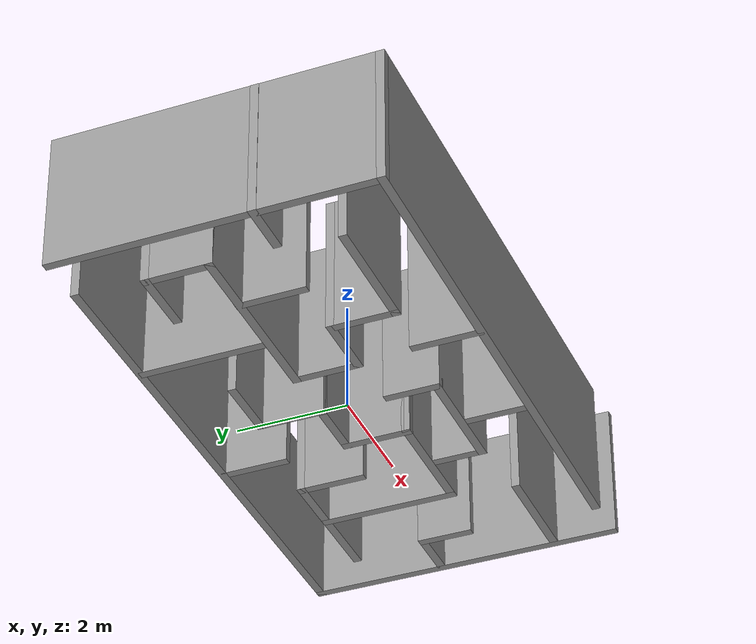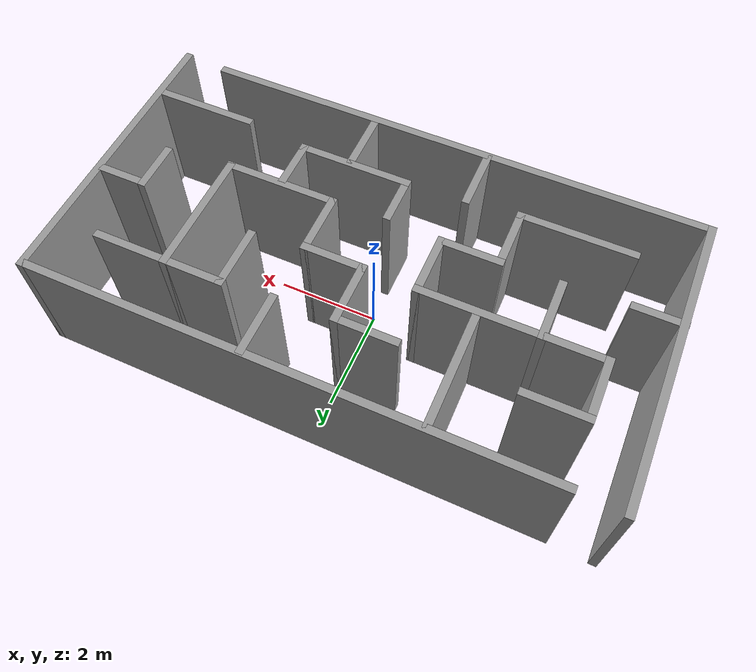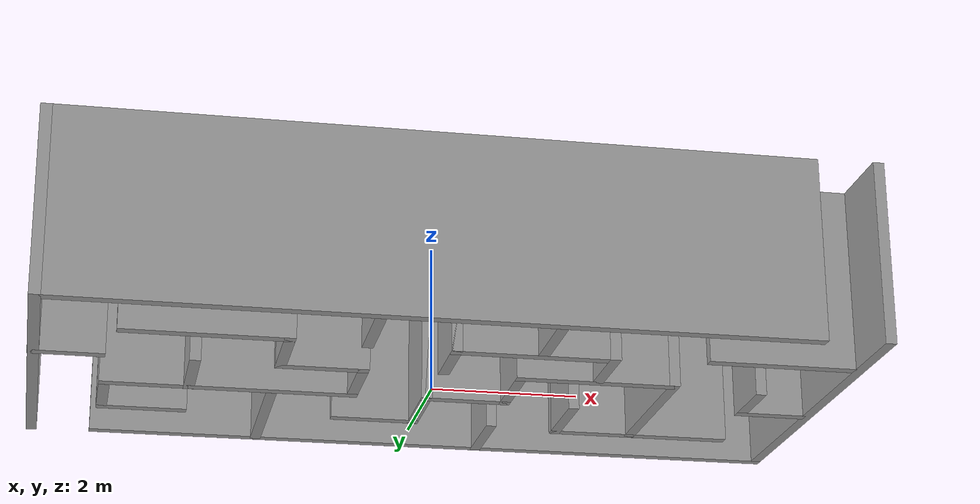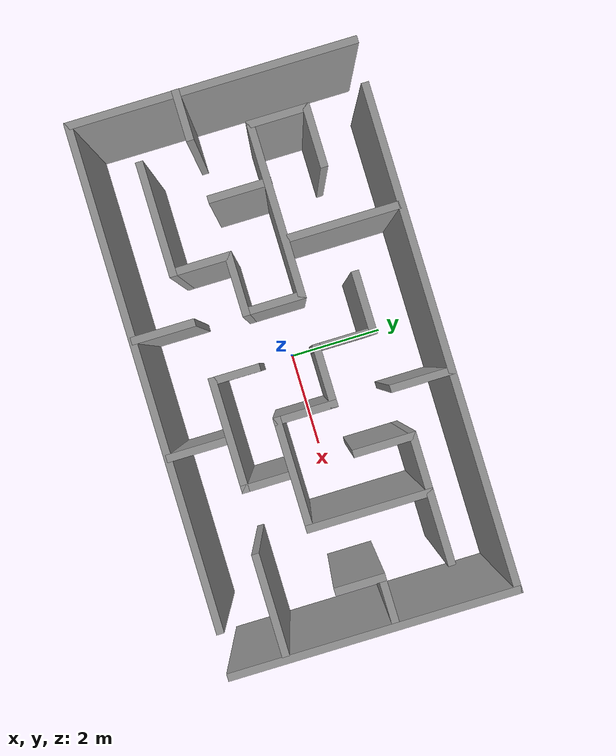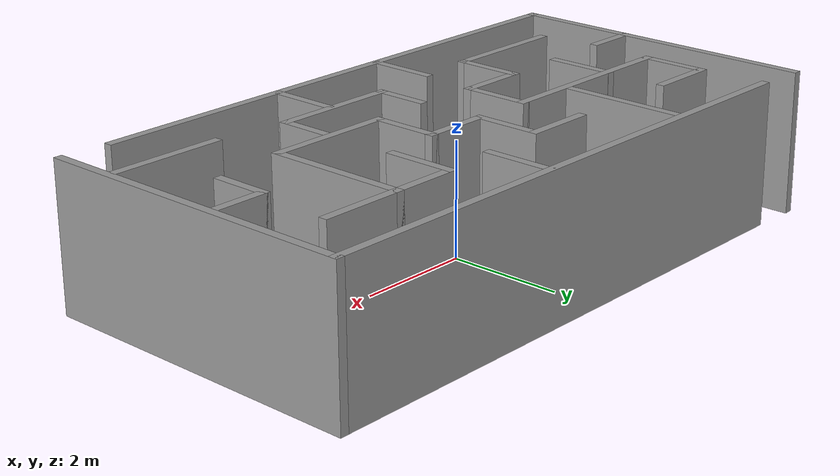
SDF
<?xml version='1.0'?>
<sdf version='1.6'>
  <model name='Maze'>
    <pose frame=''>0.053891 -0.000987 0 0 -0 0</pose>
    <link name='Wall_1'>
      <collision name='Wall_1_Collision'>
        <geometry>
          <box>
            <size>10 0.15 2.5</size>
          </box>
        </geometry>
        <pose frame=''>0 0 1.25 0 -0 0</pose>
      </collision>
      <visual name='Wall_1_Visual'>
        <pose frame=''>0 0 1.25 0 -0 0</pose>
        <geometry>
          <box>
            <size>10 0.15 2.5</size>
          </box>
        </geometry>
        <material>
          <script>
            <uri>file://media/materials/scripts/gazebo.material</uri>
            <name>Gazebo/Grey</name>
          </script>
          <ambient>1 1 1 1</ambient>
        </material>
        <meta>
          <layer>0</layer>
        </meta>
      </visual>
      <pose frame=''>0.448658 2.7832 0 0 -0 0</pose>
    </link>
    <link name='Wall_10'>
      <collision name='Wall_10_Collision'>
        <geometry>
          <box>
            <size>1.25 0.15 2.5</size>
          </box>
        </geometry>
        <pose frame=''>0 0 1.25 0 -0 0</pose>
      </collision>
      <visual name='Wall_10_Visual'>
        <pose frame=''>0 0 1.25 0 -0 0</pose>
        <geometry>
          <box>
            <size>1.25 0.15 2.5</size>
          </box>
        </geometry>
        <material>
          <script>
            <uri>file://media/materials/scripts/gazebo.material</uri>
            <name>Gazebo/Grey</name>
          </script>
          <ambient>1 1 1 1</ambient>
        </material>
        <meta>
          <layer>0</layer>
        </meta>
      </visual>
      <pose frame=''>-1.07048 -0.053081 0 0 -0 -1.5708</pose>
    </link>
    <link name='Wall_11'>
      <collision name='Wall_11_Collision'>
        <geometry>
          <box>
            <size>1.25 0.15 2.5</size>
          </box>
        </geometry>
        <pose frame=''>0 0 1.25 0 -0 0</pose>
      </collision>
      <visual name='Wall_11_Visual'>
        <pose frame=''>0 0 1.25 0 -0 0</pose>
        <geometry>
          <box>
            <size>1.25 0.15 2.5</size>
          </box>
        </geometry>
        <material>
          <script>
            <uri>file://media/materials/scripts/gazebo.material</uri>
            <name>Gazebo/Grey</name>
          </script>
          <ambient>1 1 1 1</ambient>
        </material>
        <meta>
          <layer>0</layer>
        </meta>
      </visual>
      <pose frame=''>-1.62048 -0.603081 0 0 -0 3.14159</pose>
    </link>
    <link name='Wall_12'>
      <collision name='Wall_12_Collision'>
        <geometry>
          <box>
            <size>1.25 0.15 2.5</size>
          </box>
        </geometry>
        <pose frame=''>0 0 1.25 0 -0 0</pose>
      </collision>
      <visual name='Wall_12_Visual'>
        <pose frame=''>0 0 1.25 0 -0 0</pose>
        <geometry>
          <box>
            <size>1.25 0.15 2.5</size>
          </box>
        </geometry>
        <material>
          <script>
            <uri>file://media/materials/scripts/gazebo.material</uri>
            <name>Gazebo/Grey</name>
          </script>
          <ambient>1 1 1 1</ambient>
        </material>
        <meta>
          <layer>0</layer>
        </meta>
      </visual>
      <pose frame=''>-2.17048 -1.15308 0 0 -0 -1.5708</pose>
    </link>
    <link name='Wall_13'>
      <collision name='Wall_13_Collision'>
        <geometry>
          <box>
            <size>2.25 0.15 2.5</size>
          </box>
        </geometry>
        <pose frame=''>0 0 1.25 0 -0 0</pose>
      </collision>
      <visual name='Wall_13_Visual'>
        <pose frame=''>0 0 1.25 0 -0 0</pose>
        <geometry>
          <box>
            <size>2.25 0.15 2.5</size>
          </box>
        </geometry>
        <material>
          <script>
            <uri>file://media/materials/scripts/gazebo.material</uri>
            <name>Gazebo/Grey</name>
          </script>
          <ambient>1 1 1 1</ambient>
        </material>
        <meta>
          <layer>0</layer>
        </meta>
      </visual>
      <pose frame=''>-3.22048 -1.70308 0 0 -0 3.14159</pose>
    </link>
    <link name='Wall_15'>
      <collision name='Wall_15_Collision'>
        <geometry>
          <box>
            <size>2.25 0.15 2.5</size>
          </box>
        </geometry>
        <pose frame=''>0 0 1.25 0 -0 0</pose>
      </collision>
      <visual name='Wall_15_Visual'>
        <pose frame=''>0 0 1.25 0 -0 0</pose>
        <geometry>
          <box>
            <size>2.25 0.15 2.5</size>
          </box>
        </geometry>
        <material>
          <script>
            <uri>file://media/materials/scripts/gazebo.material</uri>
            <name>Gazebo/Grey</name>
          </script>
          <ambient>1 1 1 1</ambient>
        </material>
        <meta>
          <layer>0</layer>
        </meta>
      </visual>
      <pose frame=''>-2.16461 1.67356 0 0 -0 1.5708</pose>
    </link>
    <link name='Wall_17'>
      <collision name='Wall_17_Collision'>
        <geometry>
          <box>
            <size>1.25 0.15 2.5</size>
          </box>
        </geometry>
        <pose frame=''>0 0 1.25 0 -0 0</pose>
      </collision>
      <visual name='Wall_17_Visual'>
        <pose frame=''>0 0 1.25 0 -0 0</pose>
        <geometry>
          <box>
            <size>1.25 0.15 2.5</size>
          </box>
        </geometry>
        <material>
          <script>
            <uri>file://media/materials/scripts/gazebo.material</uri>
            <name>Gazebo/Grey</name>
          </script>
          <ambient>1 1 1 1</ambient>
        </material>
        <meta>
          <layer>0</layer>
        </meta>
      </visual>
      <pose frame=''>1.09006 2.20278 0 0 -0 -1.5708</pose>
    </link>
    <link name='Wall_19'>
      <collision name='Wall_19_Collision'>
        <geometry>
          <box>
            <size>1.25 0.15 2.5</size>
          </box>
        </geometry>
        <pose frame=''>0 0 1.25 0 -0 0</pose>
      </collision>
      <visual name='Wall_19_Visual'>
        <pose frame=''>0 0 1.25 0 -0 0</pose>
        <geometry>
          <box>
            <size>1.25 0.15 2.5</size>
          </box>
        </geometry>
        <material>
          <script>
            <uri>file://media/materials/scripts/gazebo.material</uri>
            <name>Gazebo/Grey</name>
          </script>
          <ambient>1 1 1 1</ambient>
        </material>
        <meta>
          <layer>0</layer>
        </meta>
      </visual>
      <pose frame=''>-0.595626 1.58171 0 0 -0 0</pose>
    </link>
    <link name='Wall_2'>
      <collision name='Wall_2_Collision'>
        <geometry>
          <box>
            <size>5.75 0.15 2.5</size>
          </box>
        </geometry>
        <pose frame=''>0 0 1.25 0 -0 0</pose>
      </collision>
      <visual name='Wall_2_Visual'>
        <pose frame=''>0 0 1.25 0 -0 0</pose>
        <geometry>
          <box>
            <size>5.75 0.15 2.5</size>
          </box>
        </geometry>
        <material>
          <script>
            <uri>file://media/materials/scripts/gazebo.material</uri>
            <name>Gazebo/Grey</name>
          </script>
          <ambient>1 1 1 1</ambient>
        </material>
        <meta>
          <layer>0</layer>
        </meta>
      </visual>
      <pose frame=''>5.37366 -0.016799 0 0 -0 -1.5708</pose>
    </link>
    <link name='Wall_20'>
      <collision name='Wall_20_Collision'>
        <geometry>
          <box>
            <size>1.25 0.15 2.5</size>
          </box>
        </geometry>
        <pose frame=''>0 0 1.25 0 -0 0</pose>
      </collision>
      <visual name='Wall_20_Visual'>
        <pose frame=''>0 0 1.25 0 -0 0</pose>
        <geometry>
          <box>
            <size>1.25 0.15 2.5</size>
          </box>
        </geometry>
        <material>
          <script>
            <uri>file://media/materials/scripts/gazebo.material</uri>
            <name>Gazebo/Grey</name>
          </script>
          <ambient>1 1 1 1</ambient>
        </material>
        <meta>
          <layer>0</layer>
        </meta>
      </visual>
      <pose frame=''>-0.045626 1.03171 0 0 -0 -1.5708</pose>
    </link>
    <link name='Wall_21'>
      <collision name='Wall_21_Collision'>
        <geometry>
          <box>
            <size>1.25 0.15 2.5</size>
          </box>
        </geometry>
        <pose frame=''>0 0 1.25 0 -0 0</pose>
      </collision>
      <visual name='Wall_21_Visual'>
        <pose frame=''>0 0 1.25 0 -0 0</pose>
        <geometry>
          <box>
            <size>1.25 0.15 2.5</size>
          </box>
        </geometry>
        <material>
          <script>
            <uri>file://media/materials/scripts/gazebo.material</uri>
            <name>Gazebo/Grey</name>
          </script>
          <ambient>1 1 1 1</ambient>
        </material>
        <meta>
          <layer>0</layer>
        </meta>
      </visual>
      <pose frame=''>0.504374 0.48171 0 0 -0 0</pose>
    </link>
    <link name='Wall_22'>
      <collision name='Wall_22_Collision'>
        <geometry>
          <box>
            <size>1.25 0.15 2.5</size>
          </box>
        </geometry>
        <pose frame=''>0 0 1.25 0 -0 0</pose>
      </collision>
      <visual name='Wall_22_Visual'>
        <pose frame=''>0 0 1.25 0 -0 0</pose>
        <geometry>
          <box>
            <size>1.25 0.15 2.5</size>
          </box>
        </geometry>
        <material>
          <script>
            <uri>file://media/materials/scripts/gazebo.material</uri>
            <name>Gazebo/Grey</name>
          </script>
          <ambient>1 1 1 1</ambient>
        </material>
        <meta>
          <layer>0</layer>
        </meta>
      </visual>
      <pose frame=''>1.05437 -0.06829 0 0 -0 -1.5708</pose>
    </link>
    <link name='Wall_23'>
      <collision name='Wall_23_Collision'>
        <geometry>
          <box>
            <size>2.25 0.15 2.5</size>
          </box>
        </geometry>
        <pose frame=''>0 0 1.25 0 -0 0</pose>
      </collision>
      <visual name='Wall_23_Visual'>
        <pose frame=''>0 0 1.25 0 -0 0</pose>
        <geometry>
          <box>
            <size>2.25 0.15 2.5</size>
          </box>
        </geometry>
        <material>
          <script>
            <uri>file://media/materials/scripts/gazebo.material</uri>
            <name>Gazebo/Grey</name>
          </script>
          <ambient>1 1 1 1</ambient>
        </material>
        <meta>
          <layer>0</layer>
        </meta>
      </visual>
      <pose frame=''>2.10437 -0.61829 0 0 -0 0</pose>
    </link>
    <link name='Wall_24'>
      <collision name='Wall_24_Collision'>
        <geometry>
          <box>
            <size>2.5 0.15 2.5</size>
          </box>
        </geometry>
        <pose frame=''>0 0 1.25 0 -0 0</pose>
      </collision>
      <visual name='Wall_24_Visual'>
        <pose frame=''>0 0 1.25 0 -0 0</pose>
        <geometry>
          <box>
            <size>2.5 0.15 2.5</size>
          </box>
        </geometry>
        <material>
          <script>
            <uri>file://media/materials/scripts/gazebo.material</uri>
            <name>Gazebo/Grey</name>
          </script>
          <ambient>1 1 1 1</ambient>
        </material>
        <meta>
          <layer>0</layer>
        </meta>
      </visual>
      <pose frame=''>3.15437 0.55671 0 0 -0 1.5708</pose>
    </link>
    <link name='Wall_25'>
      <collision name='Wall_25_Collision'>
        <geometry>
          <box>
            <size>1.25 0.15 2.5</size>
          </box>
        </geometry>
        <pose frame=''>0 0 1.25 0 -0 0</pose>
      </collision>
      <visual name='Wall_25_Visual'>
        <pose frame=''>0 0 1.25 0 -0 0</pose>
        <geometry>
          <box>
            <size>1.25 0.15 2.5</size>
          </box>
        </geometry>
        <material>
          <script>
            <uri>file://media/materials/scripts/gazebo.material</uri>
            <name>Gazebo/Grey</name>
          </script>
          <ambient>1 1 1 1</ambient>
        </material>
        <meta>
          <layer>0</layer>
        </meta>
      </visual>
      <pose frame=''>2.60437 1.73171 0 0 -0 3.14159</pose>
    </link>
    <link name='Wall_26'>
      <collision name='Wall_26_Collision'>
        <geometry>
          <box>
            <size>1.25 0.15 2.5</size>
          </box>
        </geometry>
        <pose frame=''>0 0 1.25 0 -0 0</pose>
      </collision>
      <visual name='Wall_26_Visual'>
        <pose frame=''>0 0 1.25 0 -0 0</pose>
        <geometry>
          <box>
            <size>1.25 0.15 2.5</size>
          </box>
        </geometry>
        <material>
          <script>
            <uri>file://media/materials/scripts/gazebo.material</uri>
            <name>Gazebo/Grey</name>
          </script>
          <ambient>1 1 1 1</ambient>
        </material>
        <meta>
          <layer>0</layer>
        </meta>
      </visual>
      <pose frame=''>2.05437 1.18171 0 0 -0 -1.5708</pose>
    </link>
    <link name='Wall_28'>
      <collision name='Wall_28_Collision'>
        <geometry>
          <box>
            <size>1.5 0.15 2.5</size>
          </box>
        </geometry>
        <pose frame=''>0 0 1.25 0 -0 0</pose>
      </collision>
      <visual name='Wall_28_Visual'>
        <pose frame=''>0 0 1.25 0 -0 0</pose>
        <geometry>
          <box>
            <size>1.5 0.15 2.5</size>
          </box>
        </geometry>
        <material>
          <script>
            <uri>file://media/materials/scripts/gazebo.material</uri>
            <name>Gazebo/Grey</name>
          </script>
          <ambient>1 1 1 1</ambient>
        </material>
        <meta>
          <layer>0</layer>
        </meta>
      </visual>
      <pose frame=''>3.82937 1.73171 0 0 -0 0</pose>
    </link>
    <link name='Wall_30'>
      <collision name='Wall_30_Collision'>
        <geometry>
          <box>
            <size>1 0.15 2.5</size>
          </box>
        </geometry>
        <pose frame=''>0 0 1.25 0 -0 0</pose>
      </collision>
      <visual name='Wall_30_Visual'>
        <pose frame=''>0 0 1.25 0 -0 0</pose>
        <geometry>
          <box>
            <size>1 0.15 2.5</size>
          </box>
        </geometry>
        <material>
          <script>
            <uri>file://media/materials/scripts/gazebo.material</uri>
            <name>Gazebo/Grey</name>
          </script>
          <ambient>1 1 1 1</ambient>
        </material>
        <meta>
          <layer>0</layer>
        </meta>
      </visual>
      <pose frame=''>-0.004969 -1.13981 0 0 -0 -1.5708</pose>
    </link>
    <link name='Wall_31'>
      <collision name='Wall_31_Collision'>
        <geometry>
          <box>
            <size>2.25 0.15 2.5</size>
          </box>
        </geometry>
        <pose frame=''>0 0 1.25 0 -0 0</pose>
      </collision>
      <visual name='Wall_31_Visual'>
        <pose frame=''>0 0 1.25 0 -0 0</pose>
        <geometry>
          <box>
            <size>2.25 0.15 2.5</size>
          </box>
        </geometry>
        <material>
          <script>
            <uri>file://media/materials/scripts/gazebo.material</uri>
            <name>Gazebo/Grey</name>
          </script>
          <ambient>1 1 1 1</ambient>
        </material>
        <meta>
          <layer>0</layer>
        </meta>
      </visual>
      <pose frame=''>1.04503 -1.56481 0 0 -0 0</pose>
    </link>
    <link name='Wall_32'>
      <collision name='Wall_32_Collision'>
        <geometry>
          <box>
            <size>1 0.15 2.5</size>
          </box>
        </geometry>
        <pose frame=''>0 0 1.25 0 -0 0</pose>
      </collision>
      <visual name='Wall_32_Visual'>
        <pose frame=''>0 0 1.25 0 -0 0</pose>
        <geometry>
          <box>
            <size>1 0.15 2.5</size>
          </box>
        </geometry>
        <material>
          <script>
            <uri>file://media/materials/scripts/gazebo.material</uri>
            <name>Gazebo/Grey</name>
          </script>
          <ambient>1 1 1 1</ambient>
        </material>
        <meta>
          <layer>0</layer>
        </meta>
      </visual>
      <pose frame=''>2.09503 -1.13981 0 0 -0 1.5708</pose>
    </link>
    <link name='Wall_34'>
      <collision name='Wall_34_Collision'>
        <geometry>
          <box>
            <size>2 0.15 2.5</size>
          </box>
        </geometry>
        <pose frame=''>0 0 1.25 0 -0 0</pose>
      </collision>
      <visual name='Wall_34_Visual'>
        <pose frame=''>0 0 1.25 0 -0 0</pose>
        <geometry>
          <box>
            <size>2 0.15 2.5</size>
          </box>
        </geometry>
        <material>
          <script>
            <uri>file://media/materials/scripts/gazebo.material</uri>
            <name>Gazebo/Grey</name>
          </script>
          <ambient>1 1 1 1</ambient>
        </material>
        <meta>
          <layer>0</layer>
        </meta>
      </visual>
      <pose frame=''>4.31158 -1.7338 0 0 -0 0</pose>
    </link>
    <link name='Wall_36'>
      <collision name='Wall_36_Collision'>
        <geometry>
          <box>
            <size>1 0.15 2.5</size>
          </box>
        </geometry>
        <pose frame=''>0 0 1.25 0 -0 0</pose>
      </collision>
      <visual name='Wall_36_Visual'>
        <pose frame=''>0 0 1.25 0 -0 0</pose>
        <geometry>
          <box>
            <size>1 0.15 2.5</size>
          </box>
        </geometry>
        <material>
          <script>
            <uri>file://media/materials/scripts/gazebo.material</uri>
            <name>Gazebo/Grey</name>
          </script>
          <ambient>1 1 1 1</ambient>
        </material>
        <meta>
          <layer>0</layer>
        </meta>
      </visual>
      <pose frame=''>4.42078 -0.016054 0 0 -0 1.5708</pose>
    </link>
    <link name='Wall_37'>
      <collision name='Wall_37_Collision'>
        <geometry>
          <box>
            <size>1 0.15 2.5</size>
          </box>
        </geometry>
        <pose frame=''>0 0 1.25 0 -0 0</pose>
      </collision>
      <visual name='Wall_37_Visual'>
        <pose frame=''>0 0 1.25 0 -0 0</pose>
        <geometry>
          <box>
            <size>1 0.15 2.5</size>
          </box>
        </geometry>
        <material>
          <script>
            <uri>file://media/materials/scripts/gazebo.material</uri>
            <name>Gazebo/Grey</name>
          </script>
          <ambient>1 1 1 1</ambient>
        </material>
        <meta>
          <layer>0</layer>
        </meta>
      </visual>
      <pose frame=''>4.84578 0.408946 0 0 -0 0</pose>
    </link>
    <link name='Wall_39'>
      <collision name='Wall_39_Collision'>
        <geometry>
          <box>
            <size>1 0.15 2.5</size>
          </box>
        </geometry>
        <pose frame=''>0 0 1.25 0 -0 0</pose>
      </collision>
      <visual name='Wall_39_Visual'>
        <pose frame=''>0 0 1.25 0 -0 0</pose>
        <geometry>
          <box>
            <size>1 0.15 2.5</size>
          </box>
        </geometry>
        <material>
          <script>
            <uri>file://media/materials/scripts/gazebo.material</uri>
            <name>Gazebo/Grey</name>
          </script>
          <ambient>1 1 1 1</ambient>
        </material>
        <meta>
          <layer>0</layer>
        </meta>
      </visual>
      <pose frame=''>-4.94866 -0.669185 0 0 -0 0</pose>
    </link>
    <link name='Wall_4'>
      <collision name='Wall_4_Collision'>
        <geometry>
          <box>
            <size>10 0.15 2.5</size>
          </box>
        </geometry>
        <pose frame=''>0 0 1.25 0 -0 0</pose>
      </collision>
      <visual name='Wall_4_Visual'>
        <pose frame=''>0 0 1.25 0 -0 0</pose>
        <geometry>
          <box>
            <size>10 0.15 2.5</size>
          </box>
        </geometry>
        <material>
          <script>
            <uri>file://media/materials/scripts/gazebo.material</uri>
            <name>Gazebo/Grey</name>
          </script>
          <ambient>1 1 1 1</ambient>
        </material>
        <meta>
          <layer>0</layer>
        </meta>
      </visual>
      <pose frame=''>-0.443388 -2.7832 0 0 -0 3.14159</pose>
    </link>
    <link name='Wall_41'>
      <collision name='Wall_41_Collision'>
        <geometry>
          <box>
            <size>1.25 0.15 2.5</size>
          </box>
        </geometry>
        <pose frame=''>0 0 1.25 0 -0 0</pose>
      </collision>
      <visual name='Wall_41_Visual'>
        <pose frame=''>0 0 1.25 0 -0 0</pose>
        <geometry>
          <box>
            <size>1.25 0.15 2.5</size>
          </box>
        </geometry>
        <material>
          <script>
            <uri>file://media/materials/scripts/gazebo.material</uri>
            <name>Gazebo/Grey</name>
          </script>
          <ambient>1 1 1 1</ambient>
        </material>
        <meta>
          <layer>0</layer>
        </meta>
      </visual>
      <pose frame=''>-3.29006 -0.048111 0 0 -0 -1.5708</pose>
    </link>
    <link name='Wall_43'>
      <collision name='Wall_43_Collision'>
        <geometry>
          <box>
            <size>1.25 0.15 2.5</size>
          </box>
        </geometry>
        <pose frame=''>0 0 1.25 0 -0 0</pose>
      </collision>
      <visual name='Wall_43_Visual'>
        <pose frame=''>0 0 1.25 0 -0 0</pose>
        <geometry>
          <box>
            <size>1.25 0.15 2.5</size>
          </box>
        </geometry>
        <material>
          <script>
            <uri>file://media/materials/scripts/gazebo.material</uri>
            <name>Gazebo/Grey</name>
          </script>
          <ambient>1 1 1 1</ambient>
        </material>
        <meta>
          <layer>0</layer>
        </meta>
      </visual>
      <pose frame=''>-1.16083 -2.18757 0 0 -0 1.5708</pose>
    </link>
    <link name='Wall_45'>
      <collision name='Wall_45_Collision'>
        <geometry>
          <box>
            <size>1.25 0.15 2.5</size>
          </box>
        </geometry>
        <pose frame=''>0 0 1.25 0 -0 0</pose>
      </collision>
      <visual name='Wall_45_Visual'>
        <pose frame=''>0 0 1.25 0 -0 0</pose>
        <geometry>
          <box>
            <size>1.25 0.15 2.5</size>
          </box>
        </geometry>
        <material>
          <script>
            <uri>file://media/materials/scripts/gazebo.material</uri>
            <name>Gazebo/Grey</name>
          </script>
          <ambient>1 1 1 1</ambient>
        </material>
        <meta>
          <layer>0</layer>
        </meta>
      </visual>
      <pose frame=''>1.13569 -2.18757 0 0 -0 1.5708</pose>
    </link>
    <link name='Wall_5'>
      <collision name='Wall_5_Collision'>
        <geometry>
          <box>
            <size>5.75 0.15 2.5</size>
          </box>
        </geometry>
        <pose frame=''>0 0 1.25 0 -0 0</pose>
      </collision>
      <visual name='Wall_5_Visual'>
        <pose frame=''>0 0 1.25 0 -0 0</pose>
        <geometry>
          <box>
            <size>5.75 0.15 2.5</size>
          </box>
        </geometry>
        <material>
          <script>
            <uri>file://media/materials/scripts/gazebo.material</uri>
            <name>Gazebo/Grey</name>
          </script>
          <ambient>1 1 1 1</ambient>
        </material>
        <meta>
          <layer>0</layer>
        </meta>
      </visual>
      <pose frame=''>-5.36839 0.016799 0 0 -0 1.5708</pose>
    </link>
    <link name='Wall_7'>
      <collision name='Wall_7_Collision'>
        <geometry>
          <box>
            <size>1.25 0.15 2.5</size>
          </box>
        </geometry>
        <pose frame=''>0 0 1.25 0 -0 0</pose>
      </collision>
      <visual name='Wall_7_Visual'>
        <pose frame=''>0 0 1.25 0 -0 0</pose>
        <geometry>
          <box>
            <size>1.25 0.15 2.5</size>
          </box>
        </geometry>
        <material>
          <script>
            <uri>file://media/materials/scripts/gazebo.material</uri>
            <name>Gazebo/Grey</name>
          </script>
          <ambient>1 1 1 1</ambient>
        </material>
        <meta>
          <layer>0</layer>
        </meta>
      </visual>
      <pose frame=''>-3.87048 1.59692 0 0 -0 3.14159</pose>
    </link>
    <link name='Wall_8'>
      <collision name='Wall_8_Collision'>
        <geometry>
          <box>
            <size>1.25 0.15 2.5</size>
          </box>
        </geometry>
        <pose frame=''>0 0 1.25 0 -0 0</pose>
      </collision>
      <visual name='Wall_8_Visual'>
        <pose frame=''>0 0 1.25 0 -0 0</pose>
        <geometry>
          <box>
            <size>1.25 0.15 2.5</size>
          </box>
        </geometry>
        <material>
          <script>
            <uri>file://media/materials/scripts/gazebo.material</uri>
            <name>Gazebo/Grey</name>
          </script>
          <ambient>1 1 1 1</ambient>
        </material>
        <meta>
          <layer>0</layer>
        </meta>
      </visual>
      <pose frame=''>-4.42048 1.04692 0 0 -0 -1.5708</pose>
    </link>
    <link name='Wall_9'>
      <collision name='Wall_9_Collision'>
        <geometry>
          <box>
            <size>3.5 0.15 2.5</size>
          </box>
        </geometry>
        <pose frame=''>0 0 1.25 0 -0 0</pose>
      </collision>
      <visual name='Wall_9_Visual'>
        <pose frame=''>0 0 1.25 0 -0 0</pose>
        <geometry>
          <box>
            <size>3.5 0.15 2.5</size>
          </box>
        </geometry>
        <material>
          <script>
            <uri>file://media/materials/scripts/gazebo.material</uri>
            <name>Gazebo/Grey</name>
          </script>
          <ambient>1 1 1 1</ambient>
        </material>
        <meta>
          <layer>0</layer>
        </meta>
      </visual>
      <pose frame=''>-2.74548 0.496919 0 0 -0 0</pose>
    </link>
    <static>1</static>
  </model>
</sdf>
